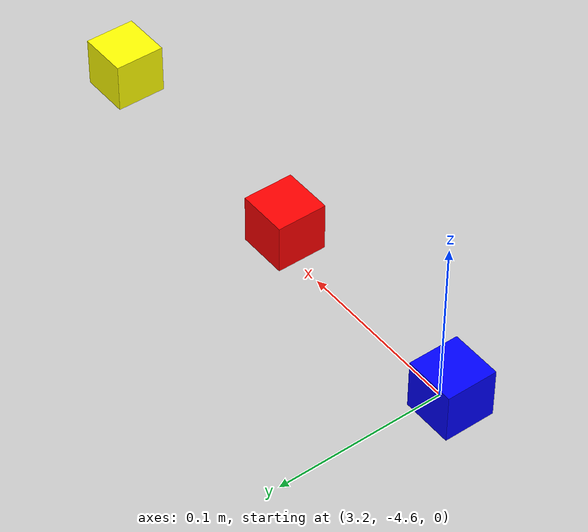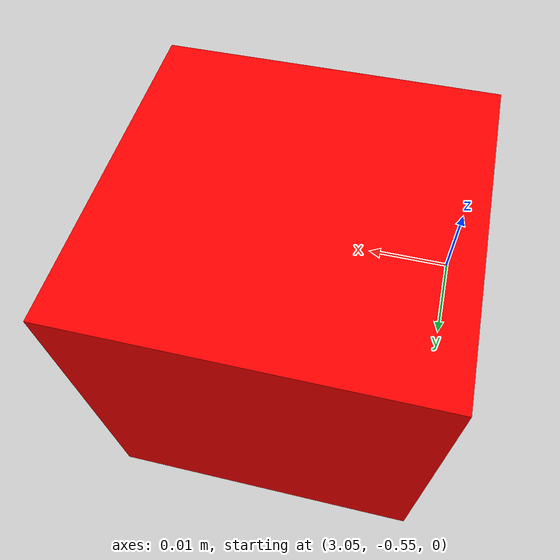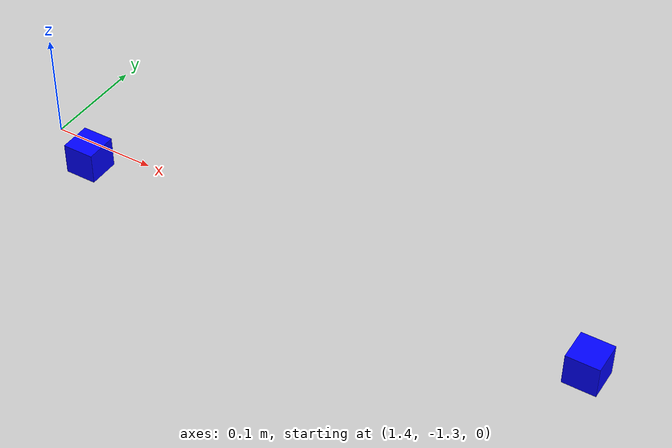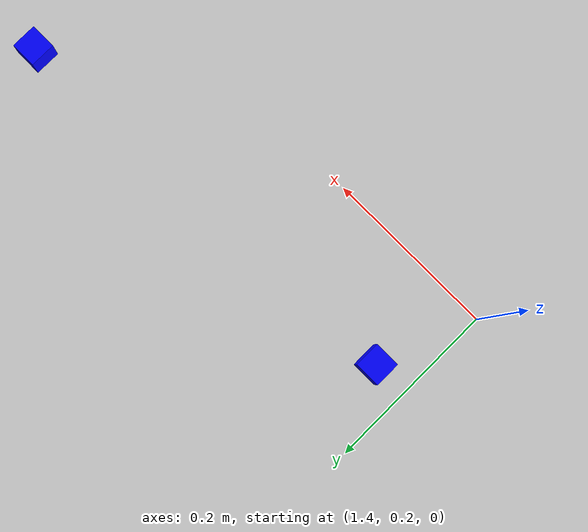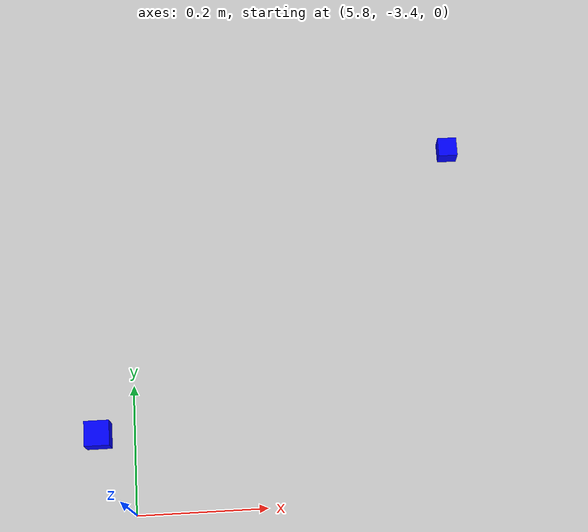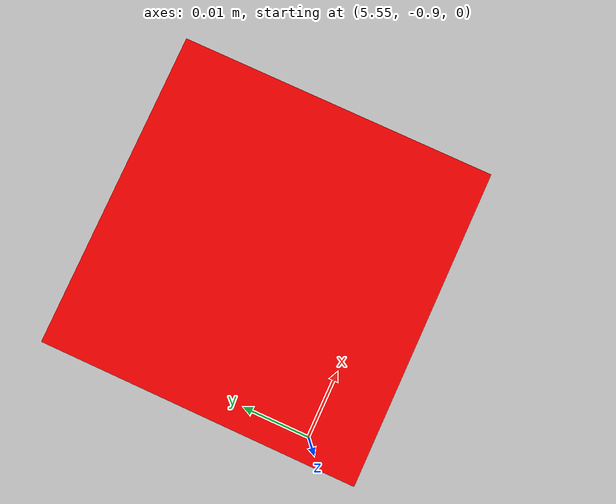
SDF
<sdf version="1.10">
 <world name="empty">
  <physics name="1ms" type="ode">
   <max_step_size>0.01</max_step_size>
   <real_time_factor>1</real_time_factor>
   <real_time_update_rate>100</real_time_update_rate>
   <ode>
    <solver><iters>50</iters><sor>1.3</sor></solver>
    <constraints>
     <contact_max_correcting_vel>100</contact_max_correcting_vel>
     <contact_surface_layer>0.001</contact_surface_layer>
    </constraints>
   </ode>
  </physics>
  <plugin name="gz::sim::systems::Physics" filename="gz-sim-physics-system"/>
  <plugin name="gz::sim::systems::UserCommands" filename="gz-sim-user-commands-system"/>
  <plugin name="gz::sim::systems::SceneBroadcaster" filename="gz-sim-scene-broadcaster-system"/>
  <plugin name="gz::sim::systems::Contact" filename="gz-sim-contact-system"/>
  <plugin name="gz::sim::systems::Sensors" filename="gz-sim-sensors-system">
   <render_engine>ogre2</render_engine>
  </plugin>
  <gravity>0 0 -9.8000000000000007</gravity>
  <magnetic_field>5.5644999999999998e-06 2.2875799999999999e-05 -4.2388400000000002e-05</magnetic_field>
  <atmosphere type="adiabatic"/>
  <scene>
   <ambient>0.400000006 0.400000006 0.400000006 1</ambient>
   <background>0.699999988 0.699999988 0.699999988 1</background>
   <shadows>false</shadows>
  </scene>
  <model name="ground_plane">
   <static>true</static>
   <link name="link">
    <collision name="collision">
     <geometry><plane><normal>0 0 1</normal><size>100 100</size></plane></geometry>
    </collision>
    <visual name="visual">
     <geometry><plane><normal>0 0 1</normal><size>100 100</size></plane></geometry>
     <material>
      <ambient>0.800000012 0.800000012 0.800000012 1</ambient>
      <diffuse>0.800000012 0.800000012 0.800000012 1</diffuse>
      <specular>0.800000012 0.800000012 0.800000012 1</specular>
     </material>
    </visual>
    <inertial>
     <mass>1</mass>
     <inertia><ixx>1</ixx><ixy>0</ixy><ixz>0</ixz><iyy>1</iyy><iyz>0</iyz><izz>1</izz></inertia>
    </inertial>
   </link>
  </model>
  <include>
   <uri>file:///home/dcx/four_arm_robot/src/my_robot_bringup/models/calibration_checkerboard</uri>
   <name>calibration_checkerboard</name>
   <pose>2.5243699550628662 -4.480140209197998 0.17037871479988098 0 0 0</pose>
  </include>
  <include>
   <uri>file:///home/dcx/four_arm_robot/src/my_robot_bringup/models/yellow_box</uri>
   <name>yellow_box</name>
   <pose>3.4896492676301172 -4.6094875876088697 0 0 0 0</pose>
  </include>
  <include>
   <uri>file:///home/dcx/four_arm_robot/src/my_robot_bringup/models/red_box</uri>
   <name>red_box</name>
   <pose>3.3330590581483337 -4.6036568470227888 0 0 0 0</pose>
  </include>
  <include>
   <uri>file:///home/dcx/four_arm_robot/src/my_robot_bringup/models/blue_box</uri>
   <name>blue_box</name>
   <pose>3.1898384240762456 -4.5980058636150041 0 0 0 0</pose>
  </include>
  <include>
   <uri>file:///home/dcx/four_arm_robot/src/my_robot_bringup/models/blue_box</uri>
   <name>blue_box_0</name>
   <pose>5.8086872100830078 -3.3486299514770508 0.4489159882068634 0 0 0</pose>
  </include>
  <include>
   <uri>file:///home/dcx/four_arm_robot/src/my_robot_bringup/models/blue_box</uri>
   <name>blue_box_1</name>
   <pose>1.4438586151424295 0.31210075485218136 0 0 0 0</pose>
  </include>
  <include>
   <uri>file:///home/dcx/four_arm_robot/src/my_robot_bringup/models/blue_box</uri>
   <name>blue_box_2</name>
   <pose>1.4574314695929886 -1.3295798411900155 0 0 0 0</pose>
  </include>
  <include>
   <uri>file:///home/dcx/four_arm_robot/src/my_robot_bringup/models/blue_box</uri>
   <name>blue_box_3</name>
   <pose>1.941421763124243 0.33137359660111887 0 0 0 0</pose>
  </include>
  <include>
   <uri>file:///home/dcx/four_arm_robot/src/my_robot_bringup/models/blue_box</uri>
   <name>blue_box_4</name>
   <pose>1.9473546048986976 -1.3277872940881426 0 0 0 0</pose>
  </include>
  <include>
   <uri>file:///home/dcx/four_arm_robot/src/my_robot_bringup/models/red_box</uri>
   <name>red_box_0</name>
   <pose>1.9594743143439031 -0.52036455289846939 0 0 0 0</pose>
  </include>
  <include>
   <uri>file:///home/dcx/four_arm_robot/src/my_robot_bringup/models/blue_box</uri>
   <name>blue_box_5</name>
   <pose>2.5316409288526645 0.35396794645017071 0 0 0 0</pose>
  </include>
  <include>
   <uri>file:///home/dcx/four_arm_robot/src/my_robot_bringup/models/blue_box</uri>
   <name>blue_box_6</name>
   <pose>2.5722143781996278 -1.336074560730427 0 0 0 0</pose>
  </include>
  <include>
   <uri>file:///home/dcx/four_arm_robot/src/my_robot_bringup/models/blue_box</uri>
   <name>blue_box_7</name>
   <pose>3.0659208267909039 -1.3448976511312096 0 0 0 0</pose>
  </include>
  <include>
   <uri>file:///home/dcx/four_arm_robot/src/my_robot_bringup/models/blue_box</uri>
   <name>blue_box_8</name>
   <pose>3.0556913911137245 0.3361271395768497 0 0 0 0</pose>
  </include>
  <include>
   <uri>file:///home/dcx/four_arm_robot/src/my_robot_bringup/models/red_box</uri>
   <name>red_box_1</name>
   <pose>3.0659207127552897 -0.53197821306144921 0 0 0 0</pose>
  </include>
  <include>
   <uri>file:///home/dcx/four_arm_robot/src/my_robot_bringup/models/yellow_box</uri>
   <name>yellow_box_0</name>
   <pose>4.3082493506059922 -0.55687996703858178 0 0 0 0</pose>
  </include>
  <include>
   <uri>file:///home/dcx/four_arm_robot/src/my_robot_bringup/models/blue_box</uri>
   <name>blue_box_9</name>
   <pose>3.6813140658032761 -1.3410502173964609 0 0 0 0</pose>
  </include>
  <include>
   <uri>file:///home/dcx/four_arm_robot/src/my_robot_bringup/models/blue_box</uri>
   <name>blue_box_10</name>
   <pose>3.6912458477206673 0.32411475677330592 0 0 0 0</pose>
  </include>
  <include>
   <uri>file:///home/dcx/four_arm_robot/src/my_robot_bringup/models/blue_box</uri>
   <name>blue_box_11</name>
   <pose>4.4121723254235992 0.3319386428661294 0 0 0 0</pose>
  </include>
  <include>
   <uri>file:///home/dcx/four_arm_robot/src/my_robot_bringup/models/blue_box</uri>
   <name>blue_box_12</name>
   <pose>4.3994200878690801 -1.3612088810004492 0 0 0 0</pose>
  </include>
  <include>
   <uri>file:///home/dcx/four_arm_robot/src/my_robot_bringup/models/blue_box</uri>
   <name>blue_box_13</name>
   <pose>4.938286034971024 0.18702451659976771 0 0 0 0</pose>
  </include>
  <include>
   <uri>file:///home/dcx/four_arm_robot/src/my_robot_bringup/models/blue_box</uri>
   <name>blue_box_14</name>
   <pose>4.9685634114002575 -1.5140844979319272 0 0 0 0</pose>
  </include>
  <include>
   <uri>file:///home/dcx/four_arm_robot/src/my_robot_bringup/models/blue_box</uri>
   <name>blue_box_15</name>
   <pose>5.5092654950163968 -0.0092977829723180916 0 0 0 0</pose>
  </include>
  <include>
   <uri>file:///home/dcx/four_arm_robot/src/my_robot_bringup/models/blue_box</uri>
   <name>blue_box_16</name>
   <pose>5.4742993650625928 -1.7516572565619364 0 0 0 0</pose>
  </include>
  <include>
   <uri>file:///home/dcx/four_arm_robot/src/my_robot_bringup/models/blue_box</uri>
   <name>blue_box_17</name>
   <pose>6.1160459518432617 -0.33476200699806213 0 0 0 0</pose>
  </include>
  <include>
   <uri>file:///home/dcx/four_arm_robot/src/my_robot_bringup/models/blue_box</uri>
   <name>blue_box_18</name>
   <pose>6.0466870772922299 -2.277645632464901 0 0 0 0</pose>
  </include>
  <include>
   <uri>file:///home/dcx/four_arm_robot/src/my_robot_bringup/models/blue_box</uri>
   <name>blue_box_19</name>
   <pose>6.3163121964037554 -2.8421423981675606 0 0 0 0</pose>
  </include>
  <include>
   <uri>file:///home/dcx/four_arm_robot/src/my_robot_bringup/models/blue_box</uri>
   <name>blue_box_20</name>
   <pose>6.7676200866699219 -0.96434980630874634 0 0 0 0</pose>
  </include>
  <include>
   <uri>file:///home/dcx/four_arm_robot/src/my_robot_bringup/models/blue_box</uri>
   <name>blue_box_21</name>
   <pose>7.2429099082946777 -1.6368105411529541 0 0 0 0</pose>
  </include>
  <include>
   <uri>file:///home/dcx/four_arm_robot/src/my_robot_bringup/models/blue_box</uri>
   <name>blue_box_22</name>
   <pose>7.5634765625 -2.3514599800109863 0 0 0 0</pose>
  </include>
  <include>
   <uri>file:///home/dcx/four_arm_robot/src/my_robot_bringup/models/blue_box</uri>
   <name>blue_box_23</name>
   <pose>7.791752815246582 -2.9363598823547363 0 0 0 0</pose>
  </include>
  <include>
   <uri>file:///home/dcx/four_arm_robot/src/my_robot_bringup/models/blue_box</uri>
   <name>blue_box_24</name>
   <pose>6.6469512933461932 -3.425527564994201 0 0 0 0</pose>
  </include>
  <include>
   <uri>file:///home/dcx/four_arm_robot/src/my_robot_bringup/models/blue_box</uri>
   <name>blue_box_25</name>
   <pose>6.9355472762892045 -4.0876398304826669 0 0 0 0</pose>
  </include>
  <include>
   <uri>file:///home/dcx/four_arm_robot/src/my_robot_bringup/models/blue_box</uri>
   <name>blue_box_26</name>
   <pose>8.0632651900967289 -3.5380647570233417 0 0 0 0</pose>
  </include>
  <include>
   <uri>file:///home/dcx/four_arm_robot/src/my_robot_bringup/models/blue_box</uri>
   <name>blue_box_27</name>
   <pose>8.2336101531982422 -4.1706910133361816 0 0 0 0</pose>
  </include>
  <include>
   <uri>file:///home/dcx/four_arm_robot/src/my_robot_bringup/models/blue_box</uri>
   <name>blue_box_28</name>
   <pose>8.2334148385158237 -4.7873242895429602 0 0 0 0</pose>
  </include>
  <include>
   <uri>file:///home/dcx/four_arm_robot/src/my_robot_bringup/models/blue_box</uri>
   <name>blue_box_29</name>
   <pose>8.2569949891232604 -5.4007032317476673 0 0 0 0</pose>
  </include>
  <include>
   <uri>file:///home/dcx/four_arm_robot/src/my_robot_bringup/models/red_box</uri>
   <name>red_box_2</name>
   <pose>5.5680078123747441 -0.88558790319073244 0 0 0 0</pose>
  </include>
  <light name="sun" type="directional">
   <pose>0 0 10 0 0 0</pose>
   <cast_shadows>false</cast_shadows>
   <intensity>1</intensity>
   <direction>-0.5 0.10000000000000001 -0.90000000000000002</direction>
   <diffuse>0.800000012 0.800000012 0.800000012 1</diffuse>
   <specular>0.200000003 0.200000003 0.200000003 1</specular>
   <attenuation>
    <range>1000</range>
    <linear>0.01</linear>
    <constant>0.90000000000000002</constant>
    <quadratic>0.001</quadratic>
   </attenuation>
   <spot><inner_angle>0</inner_angle><outer_angle>0</outer_angle><falloff>0</falloff></spot>
  </light>
 </world>
</sdf>

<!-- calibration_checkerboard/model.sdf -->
<sdf version="1.7">
  <model name="calibration_checkerboard">
    <static>true</static>
    <link name="board">
      <pose>0 0 0 0 0 0</pose>
      <visual name="board_white">
        <geometry>
          <box>
            <size>0.254 0.005 0.179</size>
          </box>
        </geometry>
        <material>
          <ambient>1 1 1 1</ambient>
          <diffuse>1 1 1 1</diffuse>
          <specular>0 0 0 1</specular>
        </material>
      </visual>
      <visual name="black_square_r0_c1"><pose>-0.0875 0 0.075 0 0 0</pose><geometry><box><size>0.025 0.0054 0.025</size></box></geometry><material><ambient>0 0 0 1</ambient><diffuse>0 0 0 1</diffuse><specular>0 0 0 1</specular></material></visual>
      <visual name="black_square_r0_c3"><pose>-0.0375 0 0.075 0 0 0</pose><geometry><box><size>0.025 0.0054 0.025</size></box></geometry><material><ambient>0 0 0 1</ambient><diffuse>0 0 0 1</diffuse><specular>0 0 0 1</specular></material></visual>
      <visual name="black_square_r0_c5"><pose>0.0125 0 0.075 0 0 0</pose><geometry><box><size>0.025 0.0054 0.025</size></box></geometry><material><ambient>0 0 0 1</ambient><diffuse>0 0 0 1</diffuse><specular>0 0 0 1</specular></material></visual>
      <visual name="black_square_r0_c7"><pose>0.0625 0 0.075 0 0 0</pose><geometry><box><size>0.025 0.0054 0.025</size></box></geometry><material><ambient>0 0 0 1</ambient><diffuse>0 0 0 1</diffuse><specular>0 0 0 1</specular></material></visual>
      <visual name="black_square_r0_c9"><pose>0.1125 0 0.075 0 0 0</pose><geometry><box><size>0.025 0.0054 0.025</size></box></geometry><material><ambient>0 0 0 1</ambient><diffuse>0 0 0 1</diffuse><specular>0 0 0 1</specular></material></visual>
      <visual name="black_square_r1_c0"><pose>-0.1125 0 0.05 0 0 0</pose><geometry><box><size>0.025 0.0054 0.025</size></box></geometry><material><ambient>0 0 0 1</ambient><diffuse>0 0 0 1</diffuse><specular>0 0 0 1</specular></material></visual>
      <visual name="black_square_r1_c2"><pose>-0.0625 0 0.05 0 0 0</pose><geometry><box><size>0.025 0.0054 0.025</size></box></geometry><material><ambient>0 0 0 1</ambient><diffuse>0 0 0 1</diffuse><specular>0 0 0 1</specular></material></visual>
      <visual name="black_square_r1_c4"><pose>-0.0125 0 0.05 0 0 0</pose><geometry><box><size>0.025 0.0054 0.025</size></box></geometry><material><ambient>0 0 0 1</ambient><diffuse>0 0 0 1</diffuse><specular>0 0 0 1</specular></material></visual>
      <visual name="black_square_r1_c6"><pose>0.0375 0 0.05 0 0 0</pose><geometry><box><size>0.025 0.0054 0.025</size></box></geometry><material><ambient>0 0 0 1</ambient><diffuse>0 0 0 1</diffuse><specular>0 0 0 1</specular></material></visual>
      <visual name="black_square_r1_c8"><pose>0.0875 0 0.05 0 0 0</pose><geometry><box><size>0.025 0.0054 0.025</size></box></geometry><material><ambient>0 0 0 1</ambient><diffuse>0 0 0 1</diffuse><specular>0 0 0 1</specular></material></visual>
      <visual name="black_square_r2_c1"><pose>-0.0875 0 0.025 0 0 0</pose><geometry><box><size>0.025 0.0054 0.025</size></box></geometry><material><ambient>0 0 0 1</ambient><diffuse>0 0 0 1</diffuse><specular>0 0 0 1</specular></material></visual>
      <visual name="black_square_r2_c3"><pose>-0.0375 0 0.025 0 0 0</pose><geometry><box><size>0.025 0.0054 0.025</size></box></geometry><material><ambient>0 0 0 1</ambient><diffuse>0 0 0 1</diffuse><specular>0 0 0 1</specular></material></visual>
      <visual name="black_square_r2_c5"><pose>0.0125 0 0.025 0 0 0</pose><geometry><box><size>0.025 0.0054 0.025</size></box></geometry><material><ambient>0 0 0 1</ambient><diffuse>0 0 0 1</diffuse><specular>0 0 0 1</specular></material></visual>
      <visual name="black_square_r2_c7"><pose>0.0625 0 0.025 0 0 0</pose><geometry><box><size>0.025 0.0054 0.025</size></box></geometry><material><ambient>0 0 0 1</ambient><diffuse>0 0 0 1</diffuse><specular>0 0 0 1</specular></material></visual>
      <visual name="black_square_r2_c9"><pose>0.1125 0 0.025 0 0 0</pose><geometry><box><size>0.025 0.0054 0.025</size></box></geometry><material><ambient>0 0 0 1</ambient><diffuse>0 0 0 1</diffuse><specular>0 0 0 1</specular></material></visual>
      <visual name="black_square_r3_c0"><pose>-0.1125 0 0 0 0 0</pose><geometry><box><size>0.025 0.0054 0.025</size></box></geometry><material><ambient>0 0 0 1</ambient><diffuse>0 0 0 1</diffuse><specular>0 0 0 1</specular></material></visual>
      <visual name="black_square_r3_c2"><pose>-0.0625 0 0 0 0 0</pose><geometry><box><size>0.025 0.0054 0.025</size></box></geometry><material><ambient>0 0 0 1</ambient><diffuse>0 0 0 1</diffuse><specular>0 0 0 1</specular></material></visual>
      <visual name="black_square_r3_c4"><pose>-0.0125 0 0 0 0 0</pose><geometry><box><size>0.025 0.0054 0.025</size></box></geometry><material><ambient>0 0 0 1</ambient><diffuse>0 0 0 1</diffuse><specular>0 0 0 1</specular></material></visual>
      <visual name="black_square_r3_c6"><pose>0.0375 0 0 0 0 0</pose><geometry><box><size>0.025 0.0054 0.025</size></box></geometry><material><ambient>0 0 0 1</ambient><diffuse>0 0 0 1</diffuse><specular>0 0 0 1</specular></material></visual>
      <visual name="black_square_r3_c8"><pose>0.0875 0 0 0 0 0</pose><geometry><box><size>0.025 0.0054 0.025</size></box></geometry><material><ambient>0 0 0 1</ambient><diffuse>0 0 0 1</diffuse><specular>0 0 0 1</specular></material></visual>
      <visual name="black_square_r4_c1"><pose>-0.0875 0 -0.025 0 0 0</pose><geometry><box><size>0.025 0.0054 0.025</size></box></geometry><material><ambient>0 0 0 1</ambient><diffuse>0 0 0 1</diffuse><specular>0 0 0 1</specular></material></visual>
      <visual name="black_square_r4_c3"><pose>-0.0375 0 -0.025 0 0 0</pose><geometry><box><size>0.025 0.0054 0.025</size></box></geometry><material><ambient>0 0 0 1</ambient><diffuse>0 0 0 1</diffuse><specular>0 0 0 1</specular></material></visual>
      <visual name="black_square_r4_c5"><pose>0.0125 0 -0.025 0 0 0</pose><geometry><box><size>0.025 0.0054 0.025</size></box></geometry><material><ambient>0 0 0 1</ambient><diffuse>0 0 0 1</diffuse><specular>0 0 0 1</specular></material></visual>
      <visual name="black_square_r4_c7"><pose>0.0625 0 -0.025 0 0 0</pose><geometry><box><size>0.025 0.0054 0.025</size></box></geometry><material><ambient>0 0 0 1</ambient><diffuse>0 0 0 1</diffuse><specular>0 0 0 1</specular></material></visual>
      <visual name="black_square_r4_c9"><pose>0.1125 0 -0.025 0 0 0</pose><geometry><box><size>0.025 0.0054 0.025</size></box></geometry><material><ambient>0 0 0 1</ambient><diffuse>0 0 0 1</diffuse><specular>0 0 0 1</specular></material></visual>
      <visual name="black_square_r5_c0"><pose>-0.1125 0 -0.05 0 0 0</pose><geometry><box><size>0.025 0.0054 0.025</size></box></geometry><material><ambient>0 0 0 1</ambient><diffuse>0 0 0 1</diffuse><specular>0 0 0 1</specular></material></visual>
      <visual name="black_square_r5_c2"><pose>-0.0625 0 -0.05 0 0 0</pose><geometry><box><size>0.025 0.0054 0.025</size></box></geometry><material><ambient>0 0 0 1</ambient><diffuse>0 0 0 1</diffuse><specular>0 0 0 1</specular></material></visual>
      <visual name="black_square_r5_c4"><pose>-0.0125 0 -0.05 0 0 0</pose><geometry><box><size>0.025 0.0054 0.025</size></box></geometry><material><ambient>0 0 0 1</ambient><diffuse>0 0 0 1</diffuse><specular>0 0 0 1</specular></material></visual>
      <visual name="black_square_r5_c6"><pose>0.0375 0 -0.05 0 0 0</pose><geometry><box><size>0.025 0.0054 0.025</size></box></geometry><material><ambient>0 0 0 1</ambient><diffuse>0 0 0 1</diffuse><specular>0 0 0 1</specular></material></visual>
      <visual name="black_square_r5_c8"><pose>0.0875 0 -0.05 0 0 0</pose><geometry><box><size>0.025 0.0054 0.025</size></box></geometry><material><ambient>0 0 0 1</ambient><diffuse>0 0 0 1</diffuse><specular>0 0 0 1</specular></material></visual>
      <visual name="black_square_r6_c1"><pose>-0.0875 0 -0.075 0 0 0</pose><geometry><box><size>0.025 0.0054 0.025</size></box></geometry><material><ambient>0 0 0 1</ambient><diffuse>0 0 0 1</diffuse><specular>0 0 0 1</specular></material></visual>
      <visual name="black_square_r6_c3"><pose>-0.0375 0 -0.075 0 0 0</pose><geometry><box><size>0.025 0.0054 0.025</size></box></geometry><material><ambient>0 0 0 1</ambient><diffuse>0 0 0 1</diffuse><specular>0 0 0 1</specular></material></visual>
      <visual name="black_square_r6_c5"><pose>0.0125 0 -0.075 0 0 0</pose><geometry><box><size>0.025 0.0054 0.025</size></box></geometry><material><ambient>0 0 0 1</ambient><diffuse>0 0 0 1</diffuse><specular>0 0 0 1</specular></material></visual>
      <visual name="black_square_r6_c7"><pose>0.0625 0 -0.075 0 0 0</pose><geometry><box><size>0.025 0.0054 0.025</size></box></geometry><material><ambient>0 0 0 1</ambient><diffuse>0 0 0 1</diffuse><specular>0 0 0 1</specular></material></visual>
      <visual name="black_square_r6_c9"><pose>0.1125 0 -0.075 0 0 0</pose><geometry><box><size>0.025 0.0054 0.025</size></box></geometry><material><ambient>0 0 0 1</ambient><diffuse>0 0 0 1</diffuse><specular>0 0 0 1</specular></material></visual>
      <collision name="collision">
        <geometry>
          <box>
            <size>0.254 0.005 0.179</size>
          </box>
        </geometry>
      </collision>
      <inertial>
        <mass>0.2</mass>
        <inertia>
          <ixx>0.001</ixx>
          <ixy>0</ixy>
          <ixz>0</ixz>
          <iyy>0.001</iyy>
          <iyz>0</iyz>
          <izz>0.001</izz>
        </inertia>
      </inertial>
    </link>
  </model>
</sdf>

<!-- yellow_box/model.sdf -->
<sdf version="1.7">
  <model name="yellow_box">
    <static>true</static>
    <link name="box">
      <pose>0 0 0.015 0 0 0</pose>
      <visual name="visual">
        <geometry>
          <box>
            <size>0.03 0.03 0.03</size>
          </box>
        </geometry>
        <material>
          <ambient>0.8 0.8 0 1</ambient>
          <diffuse>1 1 0 1</diffuse>
          <specular>0.3 0.3 0.3 1</specular>
        </material>
      </visual>
      <collision name="collision">
        <geometry>
          <box>
            <size>0.03 0.03 0.03</size>
          </box>
        </geometry>
      </collision>
      <inertial>
        <mass>0.02</mass>
        <inertia>
          <ixx>0.000003</ixx>
          <ixy>0</ixy>
          <ixz>0</ixz>
          <iyy>0.000003</iyy>
          <iyz>0</iyz>
          <izz>0.000003</izz>
        </inertia>
      </inertial>
    </link>
  </model>
</sdf>

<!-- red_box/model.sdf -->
<sdf version="1.7">
  <model name="red_box">
    <static>true</static>
    <link name="box">
      <pose>0 0 0.015 0 0 0</pose>
      <visual name="visual">
        <geometry>
          <box>
            <size>0.03 0.03 0.03</size>
          </box>
        </geometry>
        <material>
          <ambient>0.8 0 0 1</ambient>
          <diffuse>1 0 0 1</diffuse>
          <specular>0.3 0.3 0.3 1</specular>
        </material>
      </visual>
      <collision name="collision">
        <geometry>
          <box>
            <size>0.03 0.03 0.03</size>
          </box>
        </geometry>
      </collision>
      <inertial>
        <mass>0.02</mass>
        <inertia>
          <ixx>0.000003</ixx>
          <ixy>0</ixy>
          <ixz>0</ixz>
          <iyy>0.000003</iyy>
          <iyz>0</iyz>
          <izz>0.000003</izz>
        </inertia>
      </inertial>
    </link>
  </model>
</sdf>

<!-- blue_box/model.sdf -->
<sdf version="1.7">
  <model name="blue_box">
    <static>true</static>
    <link name="box">
      <pose>0 0 0.015 0 0 0</pose>
      <visual name="visual">
        <geometry>
          <box>
            <size>0.03 0.03 0.03</size>
          </box>
        </geometry>
        <material>
          <ambient>0 0 0.8 1</ambient>
          <diffuse>0 0 1 1</diffuse>
          <specular>0.3 0.3 0.3 1</specular>
        </material>
      </visual>
      <collision name="collision">
        <geometry>
          <box>
            <size>0.03 0.03 0.03</size>
          </box>
        </geometry>
      </collision>
      <inertial>
        <mass>0.02</mass>
        <inertia>
          <ixx>0.000003</ixx>
          <ixy>0</ixy>
          <ixz>0</ixz>
          <iyy>0.000003</iyy>
          <iyz>0</iyz>
          <izz>0.000003</izz>
        </inertia>
      </inertial>
    </link>
  </model>
</sdf>
